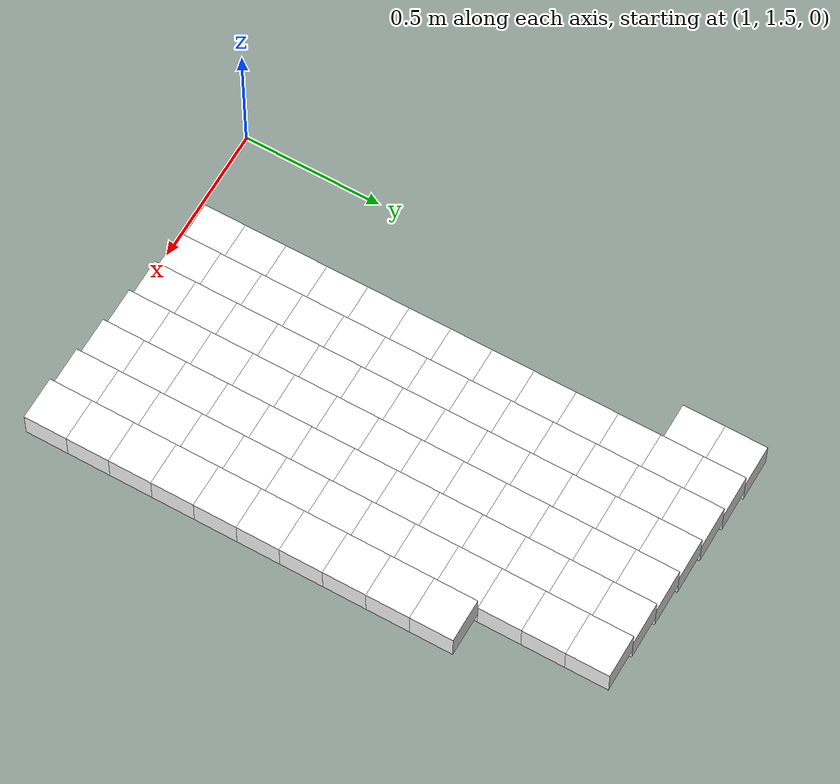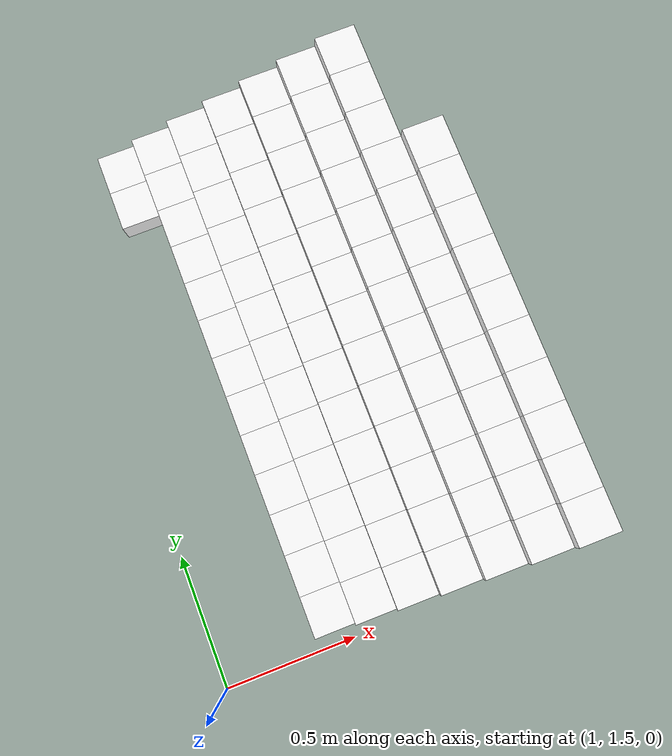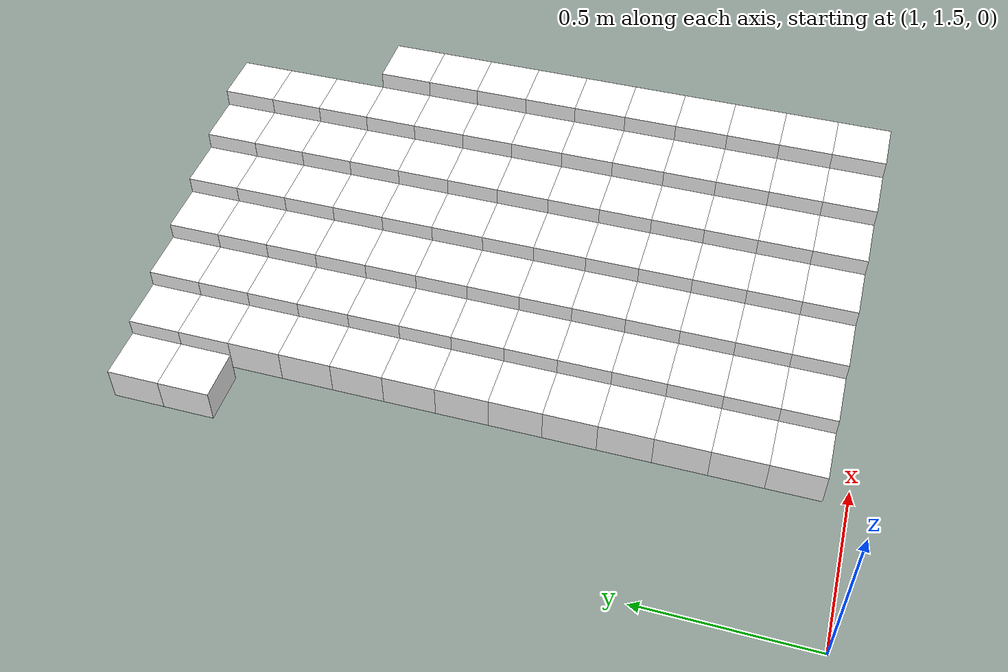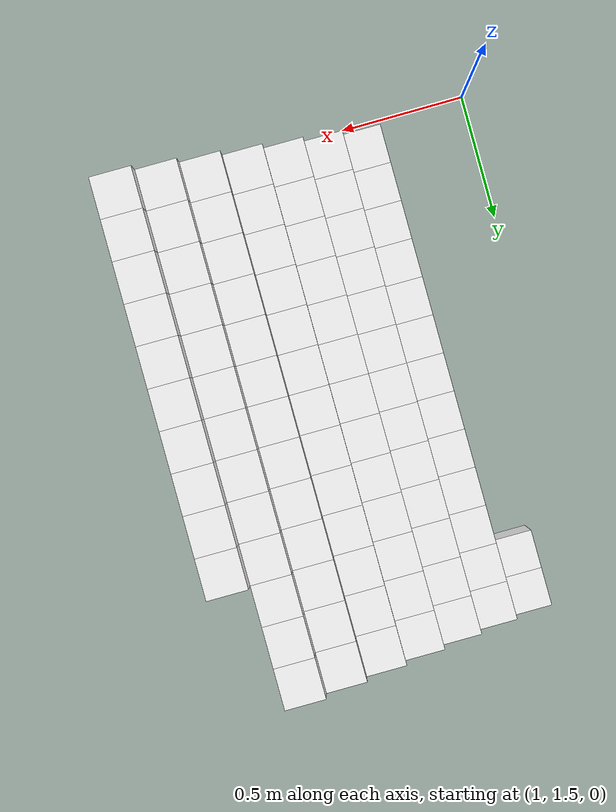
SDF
<sdf version="1.7">
 <world name="default">
  <include><uri>model://sun</uri></include>
  <model name="static_environment">
   <static>true</static>
   <link name="region_473">
    <pose>1.4499999999999997 1.65 0.15000000000000002 0.0 0.0 0.0</pose>
    <collision name="region_473_collision">
     <geometry><box><size>0.15 0.15 0.1</size></box></geometry>
     <surface><friction><ode><mu>1.0</mu><mu2>1.0</mu2></ode></friction></surface>
    </collision>
    <visual name="region_473_visual">
     <geometry><box><size>0.15 0.15 0.1</size></box></geometry>
     <material><ambient>1.0 1.0 1.0 1.0</ambient><diffuse>1.0 1.0 1.0 1.0</diffuse></material>
    </visual>
   </link>
   <link name="region_474">
    <pose>1.5999999999999996 1.65 0.2 0.0 0.0 0.0</pose>
    <collision name="region_474_collision">
     <geometry><box><size>0.15 0.15 0.1</size></box></geometry>
     <surface><friction><ode><mu>1.0</mu><mu2>1.0</mu2></ode></friction></surface>
    </collision>
    <visual name="region_474_visual">
     <geometry><box><size>0.15 0.15 0.1</size></box></geometry>
     <material><ambient>1.0 1.0 1.0 1.0</ambient><diffuse>1.0 1.0 1.0 1.0</diffuse></material>
    </visual>
   </link>
   <link name="region_475">
    <pose>1.7499999999999996 1.65 0.25 0.0 0.0 0.0</pose>
    <collision name="region_475_collision">
     <geometry><box><size>0.15 0.15 0.1</size></box></geometry>
     <surface><friction><ode><mu>1.0</mu><mu2>1.0</mu2></ode></friction></surface>
    </collision>
    <visual name="region_475_visual">
     <geometry><box><size>0.15 0.15 0.1</size></box></geometry>
     <material><ambient>1.0 1.0 1.0 1.0</ambient><diffuse>1.0 1.0 1.0 1.0</diffuse></material>
    </visual>
   </link>
   <link name="region_476">
    <pose>1.8999999999999995 1.65 0.3 0.0 0.0 0.0</pose>
    <collision name="region_476_collision">
     <geometry><box><size>0.15 0.15 0.1</size></box></geometry>
     <surface><friction><ode><mu>1.0</mu><mu2>1.0</mu2></ode></friction></surface>
    </collision>
    <visual name="region_476_visual">
     <geometry><box><size>0.15 0.15 0.1</size></box></geometry>
     <material><ambient>1.0 1.0 1.0 1.0</ambient><diffuse>1.0 1.0 1.0 1.0</diffuse></material>
    </visual>
   </link>
   <link name="region_477">
    <pose>2.05 1.65 0.35 0.0 0.0 0.0</pose>
    <collision name="region_477_collision">
     <geometry><box><size>0.15 0.15 0.1</size></box></geometry>
     <surface><friction><ode><mu>1.0</mu><mu2>1.0</mu2></ode></friction></surface>
    </collision>
    <visual name="region_477_visual">
     <geometry><box><size>0.15 0.15 0.1</size></box></geometry>
     <material><ambient>1.0 1.0 1.0 1.0</ambient><diffuse>1.0 1.0 1.0 1.0</diffuse></material>
    </visual>
   </link>
   <link name="region_478">
    <pose>2.2 1.65 0.39999999999999997 0.0 0.0 0.0</pose>
    <collision name="region_478_collision">
     <geometry><box><size>0.15 0.15 0.1</size></box></geometry>
     <surface><friction><ode><mu>1.0</mu><mu2>1.0</mu2></ode></friction></surface>
    </collision>
    <visual name="region_478_visual">
     <geometry><box><size>0.15 0.15 0.1</size></box></geometry>
     <material><ambient>1.0 1.0 1.0 1.0</ambient><diffuse>1.0 1.0 1.0 1.0</diffuse></material>
    </visual>
   </link>
   <link name="region_479">
    <pose>2.3500000000000005 1.65 0.44999999999999996 0.0 0.0 0.0</pose>
    <collision name="region_479_collision">
     <geometry><box><size>0.15 0.15 0.1</size></box></geometry>
     <surface><friction><ode><mu>1.0</mu><mu2>1.0</mu2></ode></friction></surface>
    </collision>
    <visual name="region_479_visual">
     <geometry><box><size>0.15 0.15 0.1</size></box></geometry>
     <material><ambient>1.0 1.0 1.0 1.0</ambient><diffuse>1.0 1.0 1.0 1.0</diffuse></material>
    </visual>
   </link>
   <link name="region_483">
    <pose>1.4499999999999997 1.7999999999999998 0.15000000000000002 0.0 0.0 0.0</pose>
    <collision name="region_483_collision">
     <geometry><box><size>0.15 0.15 0.1</size></box></geometry>
     <surface><friction><ode><mu>1.0</mu><mu2>1.0</mu2></ode></friction></surface>
    </collision>
    <visual name="region_483_visual">
     <geometry><box><size>0.15 0.15 0.1</size></box></geometry>
     <material><ambient>1.0 1.0 1.0 1.0</ambient><diffuse>1.0 1.0 1.0 1.0</diffuse></material>
    </visual>
   </link>
   <link name="region_484">
    <pose>1.5999999999999996 1.7999999999999998 0.2 0.0 0.0 0.0</pose>
    <collision name="region_484_collision">
     <geometry><box><size>0.15 0.15 0.1</size></box></geometry>
     <surface><friction><ode><mu>1.0</mu><mu2>1.0</mu2></ode></friction></surface>
    </collision>
    <visual name="region_484_visual">
     <geometry><box><size>0.15 0.15 0.1</size></box></geometry>
     <material><ambient>1.0 1.0 1.0 1.0</ambient><diffuse>1.0 1.0 1.0 1.0</diffuse></material>
    </visual>
   </link>
   <link name="region_485">
    <pose>1.7499999999999996 1.7999999999999998 0.25 0.0 0.0 0.0</pose>
    <collision name="region_485_collision">
     <geometry><box><size>0.15 0.15 0.1</size></box></geometry>
     <surface><friction><ode><mu>1.0</mu><mu2>1.0</mu2></ode></friction></surface>
    </collision>
    <visual name="region_485_visual">
     <geometry><box><size>0.15 0.15 0.1</size></box></geometry>
     <material><ambient>1.0 1.0 1.0 1.0</ambient><diffuse>1.0 1.0 1.0 1.0</diffuse></material>
    </visual>
   </link>
   <link name="region_486">
    <pose>1.8999999999999995 1.7999999999999998 0.3 0.0 0.0 0.0</pose>
    <collision name="region_486_collision">
     <geometry><box><size>0.15 0.15 0.1</size></box></geometry>
     <surface><friction><ode><mu>1.0</mu><mu2>1.0</mu2></ode></friction></surface>
    </collision>
    <visual name="region_486_visual">
     <geometry><box><size>0.15 0.15 0.1</size></box></geometry>
     <material><ambient>1.0 1.0 1.0 1.0</ambient><diffuse>1.0 1.0 1.0 1.0</diffuse></material>
    </visual>
   </link>
   <link name="region_487">
    <pose>2.05 1.7999999999999998 0.35 0.0 0.0 0.0</pose>
    <collision name="region_487_collision">
     <geometry><box><size>0.15 0.15 0.1</size></box></geometry>
     <surface><friction><ode><mu>1.0</mu><mu2>1.0</mu2></ode></friction></surface>
    </collision>
    <visual name="region_487_visual">
     <geometry><box><size>0.15 0.15 0.1</size></box></geometry>
     <material><ambient>1.0 1.0 1.0 1.0</ambient><diffuse>1.0 1.0 1.0 1.0</diffuse></material>
    </visual>
   </link>
   <link name="region_488">
    <pose>2.2 1.7999999999999998 0.39999999999999997 0.0 0.0 0.0</pose>
    <collision name="region_488_collision">
     <geometry><box><size>0.15 0.15 0.1</size></box></geometry>
     <surface><friction><ode><mu>1.0</mu><mu2>1.0</mu2></ode></friction></surface>
    </collision>
    <visual name="region_488_visual">
     <geometry><box><size>0.15 0.15 0.1</size></box></geometry>
     <material><ambient>1.0 1.0 1.0 1.0</ambient><diffuse>1.0 1.0 1.0 1.0</diffuse></material>
    </visual>
   </link>
   <link name="region_489">
    <pose>2.3500000000000005 1.7999999999999998 0.44999999999999996 0.0 0.0 0.0</pose>
    <collision name="region_489_collision">
     <geometry><box><size>0.15 0.15 0.1</size></box></geometry>
     <surface><friction><ode><mu>1.0</mu><mu2>1.0</mu2></ode></friction></surface>
    </collision>
    <visual name="region_489_visual">
     <geometry><box><size>0.15 0.15 0.1</size></box></geometry>
     <material><ambient>1.0 1.0 1.0 1.0</ambient><diffuse>1.0 1.0 1.0 1.0</diffuse></material>
    </visual>
   </link>
   <link name="region_493">
    <pose>1.4499999999999997 1.9499999999999997 0.15000000000000002 0.0 0.0 0.0</pose>
    <collision name="region_493_collision">
     <geometry><box><size>0.15 0.15 0.1</size></box></geometry>
     <surface><friction><ode><mu>1.0</mu><mu2>1.0</mu2></ode></friction></surface>
    </collision>
    <visual name="region_493_visual">
     <geometry><box><size>0.15 0.15 0.1</size></box></geometry>
     <material><ambient>1.0 1.0 1.0 1.0</ambient><diffuse>1.0 1.0 1.0 1.0</diffuse></material>
    </visual>
   </link>
   <link name="region_494">
    <pose>1.5999999999999996 1.9499999999999997 0.2 0.0 0.0 0.0</pose>
    <collision name="region_494_collision">
     <geometry><box><size>0.15 0.15 0.1</size></box></geometry>
     <surface><friction><ode><mu>1.0</mu><mu2>1.0</mu2></ode></friction></surface>
    </collision>
    <visual name="region_494_visual">
     <geometry><box><size>0.15 0.15 0.1</size></box></geometry>
     <material><ambient>1.0 1.0 1.0 1.0</ambient><diffuse>1.0 1.0 1.0 1.0</diffuse></material>
    </visual>
   </link>
   <link name="region_495">
    <pose>1.7499999999999996 1.9499999999999997 0.25 0.0 0.0 0.0</pose>
    <collision name="region_495_collision">
     <geometry><box><size>0.15 0.15 0.1</size></box></geometry>
     <surface><friction><ode><mu>1.0</mu><mu2>1.0</mu2></ode></friction></surface>
    </collision>
    <visual name="region_495_visual">
     <geometry><box><size>0.15 0.15 0.1</size></box></geometry>
     <material><ambient>1.0 1.0 1.0 1.0</ambient><diffuse>1.0 1.0 1.0 1.0</diffuse></material>
    </visual>
   </link>
   <link name="region_496">
    <pose>1.8999999999999995 1.9499999999999997 0.3 0.0 0.0 0.0</pose>
    <collision name="region_496_collision">
     <geometry><box><size>0.15 0.15 0.1</size></box></geometry>
     <surface><friction><ode><mu>1.0</mu><mu2>1.0</mu2></ode></friction></surface>
    </collision>
    <visual name="region_496_visual">
     <geometry><box><size>0.15 0.15 0.1</size></box></geometry>
     <material><ambient>1.0 1.0 1.0 1.0</ambient><diffuse>1.0 1.0 1.0 1.0</diffuse></material>
    </visual>
   </link>
   <link name="region_497">
    <pose>2.05 1.9499999999999997 0.35 0.0 0.0 0.0</pose>
    <collision name="region_497_collision">
     <geometry><box><size>0.15 0.15 0.1</size></box></geometry>
     <surface><friction><ode><mu>1.0</mu><mu2>1.0</mu2></ode></friction></surface>
    </collision>
    <visual name="region_497_visual">
     <geometry><box><size>0.15 0.15 0.1</size></box></geometry>
     <material><ambient>1.0 1.0 1.0 1.0</ambient><diffuse>1.0 1.0 1.0 1.0</diffuse></material>
    </visual>
   </link>
   <link name="region_498">
    <pose>2.2 1.9499999999999997 0.39999999999999997 0.0 0.0 0.0</pose>
    <collision name="region_498_collision">
     <geometry><box><size>0.15 0.15 0.1</size></box></geometry>
     <surface><friction><ode><mu>1.0</mu><mu2>1.0</mu2></ode></friction></surface>
    </collision>
    <visual name="region_498_visual">
     <geometry><box><size>0.15 0.15 0.1</size></box></geometry>
     <material><ambient>1.0 1.0 1.0 1.0</ambient><diffuse>1.0 1.0 1.0 1.0</diffuse></material>
    </visual>
   </link>
   <link name="region_499">
    <pose>2.3500000000000005 1.9499999999999997 0.44999999999999996 0.0 0.0 0.0</pose>
    <collision name="region_499_collision">
     <geometry><box><size>0.15 0.15 0.1</size></box></geometry>
     <surface><friction><ode><mu>1.0</mu><mu2>1.0</mu2></ode></friction></surface>
    </collision>
    <visual name="region_499_visual">
     <geometry><box><size>0.15 0.15 0.1</size></box></geometry>
     <material><ambient>1.0 1.0 1.0 1.0</ambient><diffuse>1.0 1.0 1.0 1.0</diffuse></material>
    </visual>
   </link>
   <link name="region_503">
    <pose>1.4499999999999997 2.0999999999999996 0.15000000000000002 0.0 0.0 0.0</pose>
    <collision name="region_503_collision">
     <geometry><box><size>0.15 0.15 0.1</size></box></geometry>
     <surface><friction><ode><mu>1.0</mu><mu2>1.0</mu2></ode></friction></surface>
    </collision>
    <visual name="region_503_visual">
     <geometry><box><size>0.15 0.15 0.1</size></box></geometry>
     <material><ambient>1.0 1.0 1.0 1.0</ambient><diffuse>1.0 1.0 1.0 1.0</diffuse></material>
    </visual>
   </link>
   <link name="region_504">
    <pose>1.5999999999999996 2.0999999999999996 0.2 0.0 0.0 0.0</pose>
    <collision name="region_504_collision">
     <geometry><box><size>0.15 0.15 0.1</size></box></geometry>
     <surface><friction><ode><mu>1.0</mu><mu2>1.0</mu2></ode></friction></surface>
    </collision>
    <visual name="region_504_visual">
     <geometry><box><size>0.15 0.15 0.1</size></box></geometry>
     <material><ambient>1.0 1.0 1.0 1.0</ambient><diffuse>1.0 1.0 1.0 1.0</diffuse></material>
    </visual>
   </link>
   <link name="region_505">
    <pose>1.7499999999999996 2.0999999999999996 0.25 0.0 0.0 0.0</pose>
    <collision name="region_505_collision">
     <geometry><box><size>0.15 0.15 0.1</size></box></geometry>
     <surface><friction><ode><mu>1.0</mu><mu2>1.0</mu2></ode></friction></surface>
    </collision>
    <visual name="region_505_visual">
     <geometry><box><size>0.15 0.15 0.1</size></box></geometry>
     <material><ambient>1.0 1.0 1.0 1.0</ambient><diffuse>1.0 1.0 1.0 1.0</diffuse></material>
    </visual>
   </link>
   <link name="region_506">
    <pose>1.8999999999999995 2.0999999999999996 0.3 0.0 0.0 0.0</pose>
    <collision name="region_506_collision">
     <geometry><box><size>0.15 0.15 0.1</size></box></geometry>
     <surface><friction><ode><mu>1.0</mu><mu2>1.0</mu2></ode></friction></surface>
    </collision>
    <visual name="region_506_visual">
     <geometry><box><size>0.15 0.15 0.1</size></box></geometry>
     <material><ambient>1.0 1.0 1.0 1.0</ambient><diffuse>1.0 1.0 1.0 1.0</diffuse></material>
    </visual>
   </link>
   <link name="region_507">
    <pose>2.05 2.0999999999999996 0.35 0.0 0.0 0.0</pose>
    <collision name="region_507_collision">
     <geometry><box><size>0.15 0.15 0.1</size></box></geometry>
     <surface><friction><ode><mu>1.0</mu><mu2>1.0</mu2></ode></friction></surface>
    </collision>
    <visual name="region_507_visual">
     <geometry><box><size>0.15 0.15 0.1</size></box></geometry>
     <material><ambient>1.0 1.0 1.0 1.0</ambient><diffuse>1.0 1.0 1.0 1.0</diffuse></material>
    </visual>
   </link>
   <link name="region_508">
    <pose>2.2 2.0999999999999996 0.39999999999999997 0.0 0.0 0.0</pose>
    <collision name="region_508_collision">
     <geometry><box><size>0.15 0.15 0.1</size></box></geometry>
     <surface><friction><ode><mu>1.0</mu><mu2>1.0</mu2></ode></friction></surface>
    </collision>
    <visual name="region_508_visual">
     <geometry><box><size>0.15 0.15 0.1</size></box></geometry>
     <material><ambient>1.0 1.0 1.0 1.0</ambient><diffuse>1.0 1.0 1.0 1.0</diffuse></material>
    </visual>
   </link>
   <link name="region_509">
    <pose>2.3500000000000005 2.0999999999999996 0.44999999999999996 0.0 0.0 0.0</pose>
    <collision name="region_509_collision">
     <geometry><box><size>0.15 0.15 0.1</size></box></geometry>
     <surface><friction><ode><mu>1.0</mu><mu2>1.0</mu2></ode></friction></surface>
    </collision>
    <visual name="region_509_visual">
     <geometry><box><size>0.15 0.15 0.1</size></box></geometry>
     <material><ambient>1.0 1.0 1.0 1.0</ambient><diffuse>1.0 1.0 1.0 1.0</diffuse></material>
    </visual>
   </link>
   <link name="region_513">
    <pose>1.4499999999999997 2.2499999999999996 0.15000000000000002 0.0 0.0 0.0</pose>
    <collision name="region_513_collision">
     <geometry><box><size>0.15 0.15 0.1</size></box></geometry>
     <surface><friction><ode><mu>1.0</mu><mu2>1.0</mu2></ode></friction></surface>
    </collision>
    <visual name="region_513_visual">
     <geometry><box><size>0.15 0.15 0.1</size></box></geometry>
     <material><ambient>1.0 1.0 1.0 1.0</ambient><diffuse>1.0 1.0 1.0 1.0</diffuse></material>
    </visual>
   </link>
   <link name="region_514">
    <pose>1.5999999999999996 2.2499999999999996 0.2 0.0 0.0 0.0</pose>
    <collision name="region_514_collision">
     <geometry><box><size>0.15 0.15 0.1</size></box></geometry>
     <surface><friction><ode><mu>1.0</mu><mu2>1.0</mu2></ode></friction></surface>
    </collision>
    <visual name="region_514_visual">
     <geometry><box><size>0.15 0.15 0.1</size></box></geometry>
     <material><ambient>1.0 1.0 1.0 1.0</ambient><diffuse>1.0 1.0 1.0 1.0</diffuse></material>
    </visual>
   </link>
   <link name="region_515">
    <pose>1.7499999999999996 2.2499999999999996 0.25 0.0 0.0 0.0</pose>
    <collision name="region_515_collision">
     <geometry><box><size>0.15 0.15 0.1</size></box></geometry>
     <surface><friction><ode><mu>1.0</mu><mu2>1.0</mu2></ode></friction></surface>
    </collision>
    <visual name="region_515_visual">
     <geometry><box><size>0.15 0.15 0.1</size></box></geometry>
     <material><ambient>1.0 1.0 1.0 1.0</ambient><diffuse>1.0 1.0 1.0 1.0</diffuse></material>
    </visual>
   </link>
   <link name="region_516">
    <pose>1.8999999999999995 2.2499999999999996 0.3 0.0 0.0 0.0</pose>
    <collision name="region_516_collision">
     <geometry><box><size>0.15 0.15 0.1</size></box></geometry>
     <surface><friction><ode><mu>1.0</mu><mu2>1.0</mu2></ode></friction></surface>
    </collision>
    <visual name="region_516_visual">
     <geometry><box><size>0.15 0.15 0.1</size></box></geometry>
     <material><ambient>1.0 1.0 1.0 1.0</ambient><diffuse>1.0 1.0 1.0 1.0</diffuse></material>
    </visual>
   </link>
   <link name="region_517">
    <pose>2.05 2.2499999999999996 0.35 0.0 0.0 0.0</pose>
    <collision name="region_517_collision">
     <geometry><box><size>0.15 0.15 0.1</size></box></geometry>
     <surface><friction><ode><mu>1.0</mu><mu2>1.0</mu2></ode></friction></surface>
    </collision>
    <visual name="region_517_visual">
     <geometry><box><size>0.15 0.15 0.1</size></box></geometry>
     <material><ambient>1.0 1.0 1.0 1.0</ambient><diffuse>1.0 1.0 1.0 1.0</diffuse></material>
    </visual>
   </link>
   <link name="region_518">
    <pose>2.2 2.2499999999999996 0.39999999999999997 0.0 0.0 0.0</pose>
    <collision name="region_518_collision">
     <geometry><box><size>0.15 0.15 0.1</size></box></geometry>
     <surface><friction><ode><mu>1.0</mu><mu2>1.0</mu2></ode></friction></surface>
    </collision>
    <visual name="region_518_visual">
     <geometry><box><size>0.15 0.15 0.1</size></box></geometry>
     <material><ambient>1.0 1.0 1.0 1.0</ambient><diffuse>1.0 1.0 1.0 1.0</diffuse></material>
    </visual>
   </link>
   <link name="region_519">
    <pose>2.3500000000000005 2.2499999999999996 0.44999999999999996 0.0 0.0 0.0</pose>
    <collision name="region_519_collision">
     <geometry><box><size>0.15 0.15 0.1</size></box></geometry>
     <surface><friction><ode><mu>1.0</mu><mu2>1.0</mu2></ode></friction></surface>
    </collision>
    <visual name="region_519_visual">
     <geometry><box><size>0.15 0.15 0.1</size></box></geometry>
     <material><ambient>1.0 1.0 1.0 1.0</ambient><diffuse>1.0 1.0 1.0 1.0</diffuse></material>
    </visual>
   </link>
   <link name="region_523">
    <pose>1.4499999999999997 2.3999999999999995 0.15000000000000002 0.0 0.0 0.0</pose>
    <collision name="region_523_collision">
     <geometry><box><size>0.15 0.15 0.1</size></box></geometry>
     <surface><friction><ode><mu>1.0</mu><mu2>1.0</mu2></ode></friction></surface>
    </collision>
    <visual name="region_523_visual">
     <geometry><box><size>0.15 0.15 0.1</size></box></geometry>
     <material><ambient>1.0 1.0 1.0 1.0</ambient><diffuse>1.0 1.0 1.0 1.0</diffuse></material>
    </visual>
   </link>
   <link name="region_524">
    <pose>1.5999999999999996 2.3999999999999995 0.2 0.0 0.0 0.0</pose>
    <collision name="region_524_collision">
     <geometry><box><size>0.15 0.15 0.1</size></box></geometry>
     <surface><friction><ode><mu>1.0</mu><mu2>1.0</mu2></ode></friction></surface>
    </collision>
    <visual name="region_524_visual">
     <geometry><box><size>0.15 0.15 0.1</size></box></geometry>
     <material><ambient>1.0 1.0 1.0 1.0</ambient><diffuse>1.0 1.0 1.0 1.0</diffuse></material>
    </visual>
   </link>
   <link name="region_525">
    <pose>1.7499999999999996 2.3999999999999995 0.25 0.0 0.0 0.0</pose>
    <collision name="region_525_collision">
     <geometry><box><size>0.15 0.15 0.1</size></box></geometry>
     <surface><friction><ode><mu>1.0</mu><mu2>1.0</mu2></ode></friction></surface>
    </collision>
    <visual name="region_525_visual">
     <geometry><box><size>0.15 0.15 0.1</size></box></geometry>
     <material><ambient>1.0 1.0 1.0 1.0</ambient><diffuse>1.0 1.0 1.0 1.0</diffuse></material>
    </visual>
   </link>
   <link name="region_526">
    <pose>1.8999999999999995 2.3999999999999995 0.3 0.0 0.0 0.0</pose>
    <collision name="region_526_collision">
     <geometry><box><size>0.15 0.15 0.1</size></box></geometry>
     <surface><friction><ode><mu>1.0</mu><mu2>1.0</mu2></ode></friction></surface>
    </collision>
    <visual name="region_526_visual">
     <geometry><box><size>0.15 0.15 0.1</size></box></geometry>
     <material><ambient>1.0 1.0 1.0 1.0</ambient><diffuse>1.0 1.0 1.0 1.0</diffuse></material>
    </visual>
   </link>
   <link name="region_527">
    <pose>2.05 2.3999999999999995 0.35 0.0 0.0 0.0</pose>
    <collision name="region_527_collision">
     <geometry><box><size>0.15 0.15 0.1</size></box></geometry>
     <surface><friction><ode><mu>1.0</mu><mu2>1.0</mu2></ode></friction></surface>
    </collision>
    <visual name="region_527_visual">
     <geometry><box><size>0.15 0.15 0.1</size></box></geometry>
     <material><ambient>1.0 1.0 1.0 1.0</ambient><diffuse>1.0 1.0 1.0 1.0</diffuse></material>
    </visual>
   </link>
   <link name="region_528">
    <pose>2.2 2.3999999999999995 0.39999999999999997 0.0 0.0 0.0</pose>
    <collision name="region_528_collision">
     <geometry><box><size>0.15 0.15 0.1</size></box></geometry>
     <surface><friction><ode><mu>1.0</mu><mu2>1.0</mu2></ode></friction></surface>
    </collision>
    <visual name="region_528_visual">
     <geometry><box><size>0.15 0.15 0.1</size></box></geometry>
     <material><ambient>1.0 1.0 1.0 1.0</ambient><diffuse>1.0 1.0 1.0 1.0</diffuse></material>
    </visual>
   </link>
   <link name="region_529">
    <pose>2.3500000000000005 2.3999999999999995 0.44999999999999996 0.0 0.0 0.0</pose>
    <collision name="region_529_collision">
     <geometry><box><size>0.15 0.15 0.1</size></box></geometry>
     <surface><friction><ode><mu>1.0</mu><mu2>1.0</mu2></ode></friction></surface>
    </collision>
    <visual name="region_529_visual">
     <geometry><box><size>0.15 0.15 0.1</size></box></geometry>
     <material><ambient>1.0 1.0 1.0 1.0</ambient><diffuse>1.0 1.0 1.0 1.0</diffuse></material>
    </visual>
   </link>
   <link name="region_533">
    <pose>1.4499999999999997 2.5499999999999994 0.15000000000000002 0.0 0.0 0.0</pose>
    <collision name="region_533_collision">
     <geometry><box><size>0.15 0.15 0.1</size></box></geometry>
     <surface><friction><ode><mu>1.0</mu><mu2>1.0</mu2></ode></friction></surface>
    </collision>
    <visual name="region_533_visual">
     <geometry><box><size>0.15 0.15 0.1</size></box></geometry>
     <material><ambient>1.0 1.0 1.0 1.0</ambient><diffuse>1.0 1.0 1.0 1.0</diffuse></material>
    </visual>
   </link>
   <link name="region_534">
    <pose>1.5999999999999996 2.5499999999999994 0.2 0.0 0.0 0.0</pose>
    <collision name="region_534_collision">
     <geometry><box><size>0.15 0.15 0.1</size></box></geometry>
     <surface><friction><ode><mu>1.0</mu><mu2>1.0</mu2></ode></friction></surface>
    </collision>
    <visual name="region_534_visual">
     <geometry><box><size>0.15 0.15 0.1</size></box></geometry>
     <material><ambient>1.0 1.0 1.0 1.0</ambient><diffuse>1.0 1.0 1.0 1.0</diffuse></material>
    </visual>
   </link>
   <link name="region_535">
    <pose>1.7499999999999996 2.5499999999999994 0.25 0.0 0.0 0.0</pose>
    <collision name="region_535_collision">
     <geometry><box><size>0.15 0.15 0.1</size></box></geometry>
     <surface><friction><ode><mu>1.0</mu><mu2>1.0</mu2></ode></friction></surface>
    </collision>
    <visual name="region_535_visual">
     <geometry><box><size>0.15 0.15 0.1</size></box></geometry>
     <material><ambient>1.0 1.0 1.0 1.0</ambient><diffuse>1.0 1.0 1.0 1.0</diffuse></material>
    </visual>
   </link>
   <link name="region_536">
    <pose>1.8999999999999995 2.5499999999999994 0.3 0.0 0.0 0.0</pose>
    <collision name="region_536_collision">
     <geometry><box><size>0.15 0.15 0.1</size></box></geometry>
     <surface><friction><ode><mu>1.0</mu><mu2>1.0</mu2></ode></friction></surface>
    </collision>
    <visual name="region_536_visual">
     <geometry><box><size>0.15 0.15 0.1</size></box></geometry>
     <material><ambient>1.0 1.0 1.0 1.0</ambient><diffuse>1.0 1.0 1.0 1.0</diffuse></material>
    </visual>
   </link>
   <link name="region_537">
    <pose>2.05 2.5499999999999994 0.35 0.0 0.0 0.0</pose>
    <collision name="region_537_collision">
     <geometry><box><size>0.15 0.15 0.1</size></box></geometry>
     <surface><friction><ode><mu>1.0</mu><mu2>1.0</mu2></ode></friction></surface>
    </collision>
    <visual name="region_537_visual">
     <geometry><box><size>0.15 0.15 0.1</size></box></geometry>
     <material><ambient>1.0 1.0 1.0 1.0</ambient><diffuse>1.0 1.0 1.0 1.0</diffuse></material>
    </visual>
   </link>
   <link name="region_538">
    <pose>2.2 2.5499999999999994 0.39999999999999997 0.0 0.0 0.0</pose>
    <collision name="region_538_collision">
     <geometry><box><size>0.15 0.15 0.1</size></box></geometry>
     <surface><friction><ode><mu>1.0</mu><mu2>1.0</mu2></ode></friction></surface>
    </collision>
    <visual name="region_538_visual">
     <geometry><box><size>0.15 0.15 0.1</size></box></geometry>
     <material><ambient>1.0 1.0 1.0 1.0</ambient><diffuse>1.0 1.0 1.0 1.0</diffuse></material>
    </visual>
   </link>
   <link name="region_539">
    <pose>2.3500000000000005 2.5499999999999994 0.44999999999999996 0.0 0.0 0.0</pose>
    <collision name="region_539_collision">
     <geometry><box><size>0.15 0.15 0.1</size></box></geometry>
     <surface><friction><ode><mu>1.0</mu><mu2>1.0</mu2></ode></friction></surface>
    </collision>
    <visual name="region_539_visual">
     <geometry><box><size>0.15 0.15 0.1</size></box></geometry>
     <material><ambient>1.0 1.0 1.0 1.0</ambient><diffuse>1.0 1.0 1.0 1.0</diffuse></material>
    </visual>
   </link>
   <link name="region_543">
    <pose>1.4499999999999997 2.6999999999999997 0.15000000000000002 0.0 0.0 0.0</pose>
    <collision name="region_543_collision">
     <geometry><box><size>0.15 0.15 0.1</size></box></geometry>
     <surface><friction><ode><mu>1.0</mu><mu2>1.0</mu2></ode></friction></surface>
    </collision>
    <visual name="region_543_visual">
     <geometry><box><size>0.15 0.15 0.1</size></box></geometry>
     <material><ambient>1.0 1.0 1.0 1.0</ambient><diffuse>1.0 1.0 1.0 1.0</diffuse></material>
    </visual>
   </link>
   <link name="region_544">
    <pose>1.5999999999999996 2.6999999999999997 0.2 0.0 0.0 0.0</pose>
    <collision name="region_544_collision">
     <geometry><box><size>0.15 0.15 0.1</size></box></geometry>
     <surface><friction><ode><mu>1.0</mu><mu2>1.0</mu2></ode></friction></surface>
    </collision>
    <visual name="region_544_visual">
     <geometry><box><size>0.15 0.15 0.1</size></box></geometry>
     <material><ambient>1.0 1.0 1.0 1.0</ambient><diffuse>1.0 1.0 1.0 1.0</diffuse></material>
    </visual>
   </link>
   <link name="region_545">
    <pose>1.7499999999999996 2.6999999999999997 0.25 0.0 0.0 0.0</pose>
    <collision name="region_545_collision">
     <geometry><box><size>0.15 0.15 0.1</size></box></geometry>
     <surface><friction><ode><mu>1.0</mu><mu2>1.0</mu2></ode></friction></surface>
    </collision>
    <visual name="region_545_visual">
     <geometry><box><size>0.15 0.15 0.1</size></box></geometry>
     <material><ambient>1.0 1.0 1.0 1.0</ambient><diffuse>1.0 1.0 1.0 1.0</diffuse></material>
    </visual>
   </link>
   <link name="region_546">
    <pose>1.8999999999999995 2.6999999999999997 0.3 0.0 0.0 0.0</pose>
    <collision name="region_546_collision">
     <geometry><box><size>0.15 0.15 0.1</size></box></geometry>
     <surface><friction><ode><mu>1.0</mu><mu2>1.0</mu2></ode></friction></surface>
    </collision>
    <visual name="region_546_visual">
     <geometry><box><size>0.15 0.15 0.1</size></box></geometry>
     <material><ambient>1.0 1.0 1.0 1.0</ambient><diffuse>1.0 1.0 1.0 1.0</diffuse></material>
    </visual>
   </link>
   <link name="region_547">
    <pose>2.05 2.6999999999999997 0.35 0.0 0.0 0.0</pose>
    <collision name="region_547_collision">
     <geometry><box><size>0.15 0.15 0.1</size></box></geometry>
     <surface><friction><ode><mu>1.0</mu><mu2>1.0</mu2></ode></friction></surface>
    </collision>
    <visual name="region_547_visual">
     <geometry><box><size>0.15 0.15 0.1</size></box></geometry>
     <material><ambient>1.0 1.0 1.0 1.0</ambient><diffuse>1.0 1.0 1.0 1.0</diffuse></material>
    </visual>
   </link>
   <link name="region_548">
    <pose>2.2 2.6999999999999997 0.39999999999999997 0.0 0.0 0.0</pose>
    <collision name="region_548_collision">
     <geometry><box><size>0.15 0.15 0.1</size></box></geometry>
     <surface><friction><ode><mu>1.0</mu><mu2>1.0</mu2></ode></friction></surface>
    </collision>
    <visual name="region_548_visual">
     <geometry><box><size>0.15 0.15 0.1</size></box></geometry>
     <material><ambient>1.0 1.0 1.0 1.0</ambient><diffuse>1.0 1.0 1.0 1.0</diffuse></material>
    </visual>
   </link>
   <link name="region_549">
    <pose>2.3500000000000005 2.6999999999999997 0.44999999999999996 0.0 0.0 0.0</pose>
    <collision name="region_549_collision">
     <geometry><box><size>0.15 0.15 0.1</size></box></geometry>
     <surface><friction><ode><mu>1.0</mu><mu2>1.0</mu2></ode></friction></surface>
    </collision>
    <visual name="region_549_visual">
     <geometry><box><size>0.15 0.15 0.1</size></box></geometry>
     <material><ambient>1.0 1.0 1.0 1.0</ambient><diffuse>1.0 1.0 1.0 1.0</diffuse></material>
    </visual>
   </link>
   <link name="region_553">
    <pose>1.4499999999999997 2.8499999999999996 0.15000000000000002 0.0 0.0 0.0</pose>
    <collision name="region_553_collision">
     <geometry><box><size>0.15 0.15 0.1</size></box></geometry>
     <surface><friction><ode><mu>1.0</mu><mu2>1.0</mu2></ode></friction></surface>
    </collision>
    <visual name="region_553_visual">
     <geometry><box><size>0.15 0.15 0.1</size></box></geometry>
     <material><ambient>1.0 1.0 1.0 1.0</ambient><diffuse>1.0 1.0 1.0 1.0</diffuse></material>
    </visual>
   </link>
   <link name="region_554">
    <pose>1.5999999999999996 2.8499999999999996 0.2 0.0 0.0 0.0</pose>
    <collision name="region_554_collision">
     <geometry><box><size>0.15 0.15 0.1</size></box></geometry>
     <surface><friction><ode><mu>1.0</mu><mu2>1.0</mu2></ode></friction></surface>
    </collision>
    <visual name="region_554_visual">
     <geometry><box><size>0.15 0.15 0.1</size></box></geometry>
     <material><ambient>1.0 1.0 1.0 1.0</ambient><diffuse>1.0 1.0 1.0 1.0</diffuse></material>
    </visual>
   </link>
   <link name="region_555">
    <pose>1.7499999999999996 2.8499999999999996 0.25 0.0 0.0 0.0</pose>
    <collision name="region_555_collision">
     <geometry><box><size>0.15 0.15 0.1</size></box></geometry>
     <surface><friction><ode><mu>1.0</mu><mu2>1.0</mu2></ode></friction></surface>
    </collision>
    <visual name="region_555_visual">
     <geometry><box><size>0.15 0.15 0.1</size></box></geometry>
     <material><ambient>1.0 1.0 1.0 1.0</ambient><diffuse>1.0 1.0 1.0 1.0</diffuse></material>
    </visual>
   </link>
   <link name="region_556">
    <pose>1.8999999999999995 2.8499999999999996 0.3 0.0 0.0 0.0</pose>
    <collision name="region_556_collision">
     <geometry><box><size>0.15 0.15 0.1</size></box></geometry>
     <surface><friction><ode><mu>1.0</mu><mu2>1.0</mu2></ode></friction></surface>
    </collision>
    <visual name="region_556_visual">
     <geometry><box><size>0.15 0.15 0.1</size></box></geometry>
     <material><ambient>1.0 1.0 1.0 1.0</ambient><diffuse>1.0 1.0 1.0 1.0</diffuse></material>
    </visual>
   </link>
   <link name="region_557">
    <pose>2.05 2.8499999999999996 0.35 0.0 0.0 0.0</pose>
    <collision name="region_557_collision">
     <geometry><box><size>0.15 0.15 0.1</size></box></geometry>
     <surface><friction><ode><mu>1.0</mu><mu2>1.0</mu2></ode></friction></surface>
    </collision>
    <visual name="region_557_visual">
     <geometry><box><size>0.15 0.15 0.1</size></box></geometry>
     <material><ambient>1.0 1.0 1.0 1.0</ambient><diffuse>1.0 1.0 1.0 1.0</diffuse></material>
    </visual>
   </link>
   <link name="region_558">
    <pose>2.2 2.8499999999999996 0.39999999999999997 0.0 0.0 0.0</pose>
    <collision name="region_558_collision">
     <geometry><box><size>0.15 0.15 0.1</size></box></geometry>
     <surface><friction><ode><mu>1.0</mu><mu2>1.0</mu2></ode></friction></surface>
    </collision>
    <visual name="region_558_visual">
     <geometry><box><size>0.15 0.15 0.1</size></box></geometry>
     <material><ambient>1.0 1.0 1.0 1.0</ambient><diffuse>1.0 1.0 1.0 1.0</diffuse></material>
    </visual>
   </link>
   <link name="region_559">
    <pose>2.3500000000000005 2.8499999999999996 0.44999999999999996 0.0 0.0 0.0</pose>
    <collision name="region_559_collision">
     <geometry><box><size>0.15 0.15 0.1</size></box></geometry>
     <surface><friction><ode><mu>1.0</mu><mu2>1.0</mu2></ode></friction></surface>
    </collision>
    <visual name="region_559_visual">
     <geometry><box><size>0.15 0.15 0.1</size></box></geometry>
     <material><ambient>1.0 1.0 1.0 1.0</ambient><diffuse>1.0 1.0 1.0 1.0</diffuse></material>
    </visual>
   </link>
   <link name="region_563">
    <pose>1.4499999999999997 2.9999999999999996 0.15000000000000002 0.0 0.0 0.0</pose>
    <collision name="region_563_collision">
     <geometry><box><size>0.15 0.15 0.1</size></box></geometry>
     <surface><friction><ode><mu>1.0</mu><mu2>1.0</mu2></ode></friction></surface>
    </collision>
    <visual name="region_563_visual">
     <geometry><box><size>0.15 0.15 0.1</size></box></geometry>
     <material><ambient>1.0 1.0 1.0 1.0</ambient><diffuse>1.0 1.0 1.0 1.0</diffuse></material>
    </visual>
   </link>
   <link name="region_564">
    <pose>1.5999999999999996 2.9999999999999996 0.2 0.0 0.0 0.0</pose>
    <collision name="region_564_collision">
     <geometry><box><size>0.15 0.15 0.1</size></box></geometry>
     <surface><friction><ode><mu>1.0</mu><mu2>1.0</mu2></ode></friction></surface>
    </collision>
    <visual name="region_564_visual">
     <geometry><box><size>0.15 0.15 0.1</size></box></geometry>
     <material><ambient>1.0 1.0 1.0 1.0</ambient><diffuse>1.0 1.0 1.0 1.0</diffuse></material>
    </visual>
   </link>
   <link name="region_565">
    <pose>1.7499999999999996 2.9999999999999996 0.25 0.0 0.0 0.0</pose>
    <collision name="region_565_collision">
     <geometry><box><size>0.15 0.15 0.1</size></box></geometry>
     <surface><friction><ode><mu>1.0</mu><mu2>1.0</mu2></ode></friction></surface>
    </collision>
    <visual name="region_565_visual">
     <geometry><box><size>0.15 0.15 0.1</size></box></geometry>
     <material><ambient>1.0 1.0 1.0 1.0</ambient><diffuse>1.0 1.0 1.0 1.0</diffuse></material>
    </visual>
   </link>
   <link name="region_566">
    <pose>1.8999999999999995 2.9999999999999996 0.3 0.0 0.0 0.0</pose>
    <collision name="region_566_collision">
     <geometry><box><size>0.15 0.15 0.1</size></box></geometry>
     <surface><friction><ode><mu>1.0</mu><mu2>1.0</mu2></ode></friction></surface>
    </collision>
    <visual name="region_566_visual">
     <geometry><box><size>0.15 0.15 0.1</size></box></geometry>
     <material><ambient>1.0 1.0 1.0 1.0</ambient><diffuse>1.0 1.0 1.0 1.0</diffuse></material>
    </visual>
   </link>
   <link name="region_567">
    <pose>2.05 2.9999999999999996 0.35 0.0 0.0 0.0</pose>
    <collision name="region_567_collision">
     <geometry><box><size>0.15 0.15 0.1</size></box></geometry>
     <surface><friction><ode><mu>1.0</mu><mu2>1.0</mu2></ode></friction></surface>
    </collision>
    <visual name="region_567_visual">
     <geometry><box><size>0.15 0.15 0.1</size></box></geometry>
     <material><ambient>1.0 1.0 1.0 1.0</ambient><diffuse>1.0 1.0 1.0 1.0</diffuse></material>
    </visual>
   </link>
   <link name="region_568">
    <pose>2.2 2.9999999999999996 0.39999999999999997 0.0 0.0 0.0</pose>
    <collision name="region_568_collision">
     <geometry><box><size>0.15 0.15 0.1</size></box></geometry>
     <surface><friction><ode><mu>1.0</mu><mu2>1.0</mu2></ode></friction></surface>
    </collision>
    <visual name="region_568_visual">
     <geometry><box><size>0.15 0.15 0.1</size></box></geometry>
     <material><ambient>1.0 1.0 1.0 1.0</ambient><diffuse>1.0 1.0 1.0 1.0</diffuse></material>
    </visual>
   </link>
   <link name="region_569">
    <pose>2.3500000000000005 2.9999999999999996 0.44999999999999996 0.0 0.0 0.0</pose>
    <collision name="region_569_collision">
     <geometry><box><size>0.15 0.15 0.1</size></box></geometry>
     <surface><friction><ode><mu>1.0</mu><mu2>1.0</mu2></ode></friction></surface>
    </collision>
    <visual name="region_569_visual">
     <geometry><box><size>0.15 0.15 0.1</size></box></geometry>
     <material><ambient>1.0 1.0 1.0 1.0</ambient><diffuse>1.0 1.0 1.0 1.0</diffuse></material>
    </visual>
   </link>
   <link name="region_573">
    <pose>1.4499999999999997 3.1499999999999995 0.15000000000000002 0.0 0.0 0.0</pose>
    <collision name="region_573_collision">
     <geometry><box><size>0.15 0.15 0.1</size></box></geometry>
     <surface><friction><ode><mu>1.0</mu><mu2>1.0</mu2></ode></friction></surface>
    </collision>
    <visual name="region_573_visual">
     <geometry><box><size>0.15 0.15 0.1</size></box></geometry>
     <material><ambient>1.0 1.0 1.0 1.0</ambient><diffuse>1.0 1.0 1.0 1.0</diffuse></material>
    </visual>
   </link>
   <link name="region_574">
    <pose>1.5999999999999996 3.1499999999999995 0.2 0.0 0.0 0.0</pose>
    <collision name="region_574_collision">
     <geometry><box><size>0.15 0.15 0.1</size></box></geometry>
     <surface><friction><ode><mu>1.0</mu><mu2>1.0</mu2></ode></friction></surface>
    </collision>
    <visual name="region_574_visual">
     <geometry><box><size>0.15 0.15 0.1</size></box></geometry>
     <material><ambient>1.0 1.0 1.0 1.0</ambient><diffuse>1.0 1.0 1.0 1.0</diffuse></material>
    </visual>
   </link>
   <link name="region_575">
    <pose>1.7499999999999996 3.1499999999999995 0.25 0.0 0.0 0.0</pose>
    <collision name="region_575_collision">
     <geometry><box><size>0.15 0.15 0.1</size></box></geometry>
     <surface><friction><ode><mu>1.0</mu><mu2>1.0</mu2></ode></friction></surface>
    </collision>
    <visual name="region_575_visual">
     <geometry><box><size>0.15 0.15 0.1</size></box></geometry>
     <material><ambient>1.0 1.0 1.0 1.0</ambient><diffuse>1.0 1.0 1.0 1.0</diffuse></material>
    </visual>
   </link>
   <link name="region_576">
    <pose>1.8999999999999995 3.1499999999999995 0.3 0.0 0.0 0.0</pose>
    <collision name="region_576_collision">
     <geometry><box><size>0.15 0.15 0.1</size></box></geometry>
     <surface><friction><ode><mu>1.0</mu><mu2>1.0</mu2></ode></friction></surface>
    </collision>
    <visual name="region_576_visual">
     <geometry><box><size>0.15 0.15 0.1</size></box></geometry>
     <material><ambient>1.0 1.0 1.0 1.0</ambient><diffuse>1.0 1.0 1.0 1.0</diffuse></material>
    </visual>
   </link>
   <link name="region_577">
    <pose>2.05 3.1499999999999995 0.35 0.0 0.0 0.0</pose>
    <collision name="region_577_collision">
     <geometry><box><size>0.15 0.15 0.1</size></box></geometry>
     <surface><friction><ode><mu>1.0</mu><mu2>1.0</mu2></ode></friction></surface>
    </collision>
    <visual name="region_577_visual">
     <geometry><box><size>0.15 0.15 0.1</size></box></geometry>
     <material><ambient>1.0 1.0 1.0 1.0</ambient><diffuse>1.0 1.0 1.0 1.0</diffuse></material>
    </visual>
   </link>
   <link name="region_578">
    <pose>2.2 3.1499999999999995 0.39999999999999997 0.0 0.0 0.0</pose>
    <collision name="region_578_collision">
     <geometry><box><size>0.15 0.15 0.1</size></box></geometry>
     <surface><friction><ode><mu>1.0</mu><mu2>1.0</mu2></ode></friction></surface>
    </collision>
    <visual name="region_578_visual">
     <geometry><box><size>0.15 0.15 0.1</size></box></geometry>
     <material><ambient>1.0 1.0 1.0 1.0</ambient><diffuse>1.0 1.0 1.0 1.0</diffuse></material>
    </visual>
   </link>
   <link name="region_582">
    <pose>1.2999999999999998 3.2999999999999994 0.1 0.0 0.0 0.0</pose>
    <collision name="region_582_collision">
     <geometry><box><size>0.15 0.15 0.1</size></box></geometry>
     <surface><friction><ode><mu>1.0</mu><mu2>1.0</mu2></ode></friction></surface>
    </collision>
    <visual name="region_582_visual">
     <geometry><box><size>0.15 0.15 0.1</size></box></geometry>
     <material><ambient>1.0 1.0 1.0 1.0</ambient><diffuse>1.0 1.0 1.0 1.0</diffuse></material>
    </visual>
   </link>
   <link name="region_583">
    <pose>1.4499999999999997 3.2999999999999994 0.15000000000000002 0.0 0.0 0.0</pose>
    <collision name="region_583_collision">
     <geometry><box><size>0.15 0.15 0.1</size></box></geometry>
     <surface><friction><ode><mu>1.0</mu><mu2>1.0</mu2></ode></friction></surface>
    </collision>
    <visual name="region_583_visual">
     <geometry><box><size>0.15 0.15 0.1</size></box></geometry>
     <material><ambient>1.0 1.0 1.0 1.0</ambient><diffuse>1.0 1.0 1.0 1.0</diffuse></material>
    </visual>
   </link>
   <link name="region_584">
    <pose>1.5999999999999996 3.2999999999999994 0.2 0.0 0.0 0.0</pose>
    <collision name="region_584_collision">
     <geometry><box><size>0.15 0.15 0.1</size></box></geometry>
     <surface><friction><ode><mu>1.0</mu><mu2>1.0</mu2></ode></friction></surface>
    </collision>
    <visual name="region_584_visual">
     <geometry><box><size>0.15 0.15 0.1</size></box></geometry>
     <material><ambient>1.0 1.0 1.0 1.0</ambient><diffuse>1.0 1.0 1.0 1.0</diffuse></material>
    </visual>
   </link>
   <link name="region_585">
    <pose>1.7499999999999996 3.2999999999999994 0.25 0.0 0.0 0.0</pose>
    <collision name="region_585_collision">
     <geometry><box><size>0.15 0.15 0.1</size></box></geometry>
     <surface><friction><ode><mu>1.0</mu><mu2>1.0</mu2></ode></friction></surface>
    </collision>
    <visual name="region_585_visual">
     <geometry><box><size>0.15 0.15 0.1</size></box></geometry>
     <material><ambient>1.0 1.0 1.0 1.0</ambient><diffuse>1.0 1.0 1.0 1.0</diffuse></material>
    </visual>
   </link>
   <link name="region_586">
    <pose>1.8999999999999995 3.2999999999999994 0.3 0.0 0.0 0.0</pose>
    <collision name="region_586_collision">
     <geometry><box><size>0.15 0.15 0.1</size></box></geometry>
     <surface><friction><ode><mu>1.0</mu><mu2>1.0</mu2></ode></friction></surface>
    </collision>
    <visual name="region_586_visual">
     <geometry><box><size>0.15 0.15 0.1</size></box></geometry>
     <material><ambient>1.0 1.0 1.0 1.0</ambient><diffuse>1.0 1.0 1.0 1.0</diffuse></material>
    </visual>
   </link>
   <link name="region_587">
    <pose>2.05 3.2999999999999994 0.35 0.0 0.0 0.0</pose>
    <collision name="region_587_collision">
     <geometry><box><size>0.15 0.15 0.1</size></box></geometry>
     <surface><friction><ode><mu>1.0</mu><mu2>1.0</mu2></ode></friction></surface>
    </collision>
    <visual name="region_587_visual">
     <geometry><box><size>0.15 0.15 0.1</size></box></geometry>
     <material><ambient>1.0 1.0 1.0 1.0</ambient><diffuse>1.0 1.0 1.0 1.0</diffuse></material>
    </visual>
   </link>
   <link name="region_588">
    <pose>2.2 3.2999999999999994 0.39999999999999997 0.0 0.0 0.0</pose>
    <collision name="region_588_collision">
     <geometry><box><size>0.15 0.15 0.1</size></box></geometry>
     <surface><friction><ode><mu>1.0</mu><mu2>1.0</mu2></ode></friction></surface>
    </collision>
    <visual name="region_588_visual">
     <geometry><box><size>0.15 0.15 0.1</size></box></geometry>
     <material><ambient>1.0 1.0 1.0 1.0</ambient><diffuse>1.0 1.0 1.0 1.0</diffuse></material>
    </visual>
   </link>
   <link name="region_592">
    <pose>1.2999999999999998 3.4499999999999993 0.1 0.0 0.0 0.0</pose>
    <collision name="region_592_collision">
     <geometry><box><size>0.15 0.15 0.1</size></box></geometry>
     <surface><friction><ode><mu>1.0</mu><mu2>1.0</mu2></ode></friction></surface>
    </collision>
    <visual name="region_592_visual">
     <geometry><box><size>0.15 0.15 0.1</size></box></geometry>
     <material><ambient>1.0 1.0 1.0 1.0</ambient><diffuse>1.0 1.0 1.0 1.0</diffuse></material>
    </visual>
   </link>
   <link name="region_593">
    <pose>1.4499999999999997 3.4499999999999993 0.15000000000000002 0.0 0.0 0.0</pose>
    <collision name="region_593_collision">
     <geometry><box><size>0.15 0.15 0.1</size></box></geometry>
     <surface><friction><ode><mu>1.0</mu><mu2>1.0</mu2></ode></friction></surface>
    </collision>
    <visual name="region_593_visual">
     <geometry><box><size>0.15 0.15 0.1</size></box></geometry>
     <material><ambient>1.0 1.0 1.0 1.0</ambient><diffuse>1.0 1.0 1.0 1.0</diffuse></material>
    </visual>
   </link>
   <link name="region_594">
    <pose>1.5999999999999996 3.4499999999999993 0.2 0.0 0.0 0.0</pose>
    <collision name="region_594_collision">
     <geometry><box><size>0.15 0.15 0.1</size></box></geometry>
     <surface><friction><ode><mu>1.0</mu><mu2>1.0</mu2></ode></friction></surface>
    </collision>
    <visual name="region_594_visual">
     <geometry><box><size>0.15 0.15 0.1</size></box></geometry>
     <material><ambient>1.0 1.0 1.0 1.0</ambient><diffuse>1.0 1.0 1.0 1.0</diffuse></material>
    </visual>
   </link>
   <link name="region_595">
    <pose>1.7499999999999996 3.4499999999999993 0.25 0.0 0.0 0.0</pose>
    <collision name="region_595_collision">
     <geometry><box><size>0.15 0.15 0.1</size></box></geometry>
     <surface><friction><ode><mu>1.0</mu><mu2>1.0</mu2></ode></friction></surface>
    </collision>
    <visual name="region_595_visual">
     <geometry><box><size>0.15 0.15 0.1</size></box></geometry>
     <material><ambient>1.0 1.0 1.0 1.0</ambient><diffuse>1.0 1.0 1.0 1.0</diffuse></material>
    </visual>
   </link>
   <link name="region_596">
    <pose>1.8999999999999995 3.4499999999999993 0.3 0.0 0.0 0.0</pose>
    <collision name="region_596_collision">
     <geometry><box><size>0.15 0.15 0.1</size></box></geometry>
     <surface><friction><ode><mu>1.0</mu><mu2>1.0</mu2></ode></friction></surface>
    </collision>
    <visual name="region_596_visual">
     <geometry><box><size>0.15 0.15 0.1</size></box></geometry>
     <material><ambient>1.0 1.0 1.0 1.0</ambient><diffuse>1.0 1.0 1.0 1.0</diffuse></material>
    </visual>
   </link>
   <link name="region_597">
    <pose>2.05 3.4499999999999993 0.35 0.0 0.0 0.0</pose>
    <collision name="region_597_collision">
     <geometry><box><size>0.15 0.15 0.1</size></box></geometry>
     <surface><friction><ode><mu>1.0</mu><mu2>1.0</mu2></ode></friction></surface>
    </collision>
    <visual name="region_597_visual">
     <geometry><box><size>0.15 0.15 0.1</size></box></geometry>
     <material><ambient>1.0 1.0 1.0 1.0</ambient><diffuse>1.0 1.0 1.0 1.0</diffuse></material>
    </visual>
   </link>
   <link name="region_598">
    <pose>2.2 3.4499999999999993 0.39999999999999997 0.0 0.0 0.0</pose>
    <collision name="region_598_collision">
     <geometry><box><size>0.15 0.15 0.1</size></box></geometry>
     <surface><friction><ode><mu>1.0</mu><mu2>1.0</mu2></ode></friction></surface>
    </collision>
    <visual name="region_598_visual">
     <geometry><box><size>0.15 0.15 0.1</size></box></geometry>
     <material><ambient>1.0 1.0 1.0 1.0</ambient><diffuse>1.0 1.0 1.0 1.0</diffuse></material>
    </visual>
   </link>
  </model>
 </world>
</sdf>
